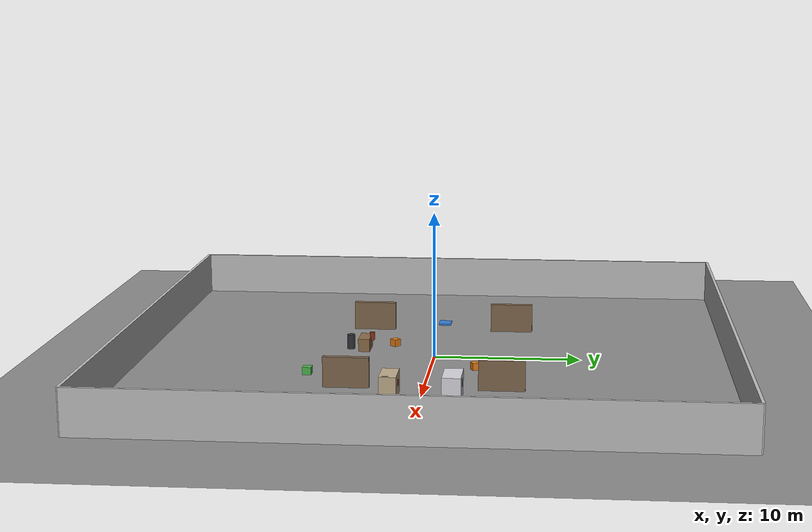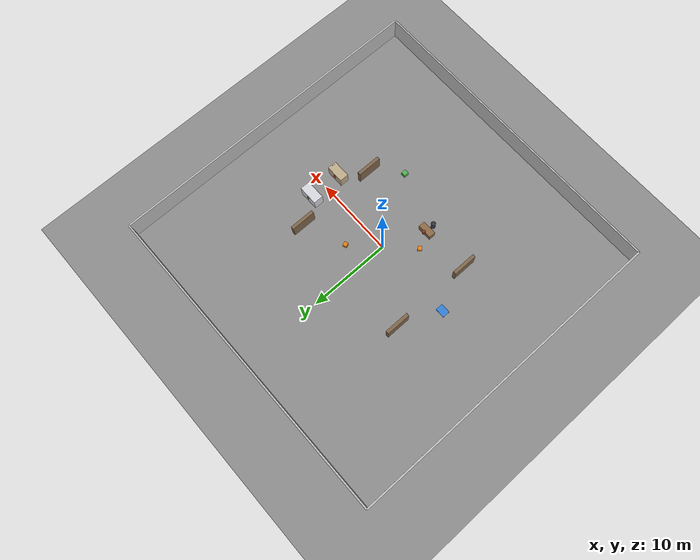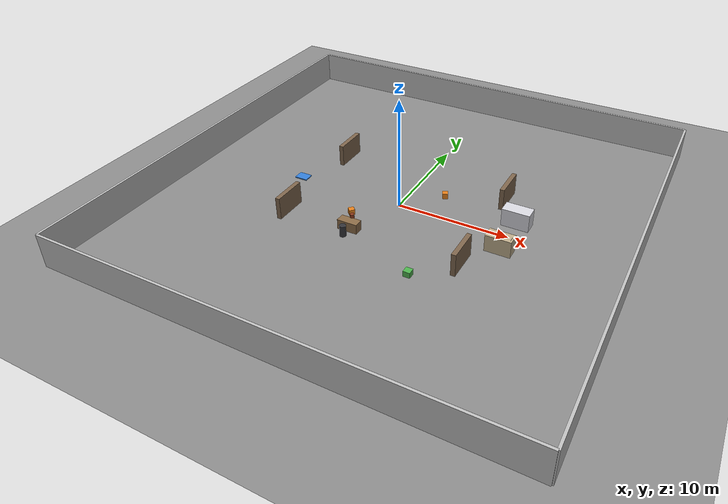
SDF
<?xml version="1.0" ?>
<sdf version="1.9">
  <world name="frontierx_warehouse">

    <!-- ── Physics ────────────────────────────────────────── -->
    <physics name="1ms" type="ignored">
      <max_step_size>0.001</max_step_size>
      <real_time_factor>1.0</real_time_factor>
      <real_time_update_rate>1000</real_time_update_rate>
    </physics>

    <!-- ── Required plugins ───────────────────────────────── -->
    <plugin filename="gz-sim-physics-system"
            name="gz::sim::systems::Physics"/>
    <plugin filename="gz-sim-user-commands-system"
            name="gz::sim::systems::UserCommands"/>
    <plugin filename="gz-sim-scene-broadcaster-system"
            name="gz::sim::systems::SceneBroadcaster"/>
    <plugin filename="gz-sim-contact-system"
            name="gz::sim::systems::Contact"/>
    <plugin filename=
    "gz-sim-sensors-system"
            name="gz::sim::systems::Sensors">
      <render_engine>ogre</render_engine>
    </plugin>
    <plugin filename="gz-sim-imu-system"
            name="gz::sim::systems::Imu"/>
    <plugin filename="gz-sim-navsat-system"
            name="gz::sim::systems::NavSat"/>
    <plugin filename="gz-sim-joint-state-publisher-system"
            name="gz::sim::systems::JointStatePublisher">
      <publish_link_pose>true</publish_link_pose>
    </plugin>

    <!-- ── Gravity ────────────────────────────────────────── -->
    <gravity>0 0 -9.8</gravity>
    <magnetic_field>5.5645e-6 2.2875e-5 -4.2731e-5</magnetic_field>
    <atmosphere type="adiabatic"/>

    <!-- ── Scene ─────────────────────────────────────────── -->
    <scene>
      <sky/>
      <grid>false</grid>
      <ambient>0.4 0.4 0.4 1</ambient>
      <background>0.15 0.15 0.18 1</background>
      <shadows>true</shadows>
    </scene>

    <!-- ── Sun (directional light) ───────────────────────── -->
    <light type="directional" name="sun">
      <cast_shadows>true</cast_shadows>
      <pose>0 0 10 0 0 0</pose>
      <diffuse>0.9 0.9 0.85 1</diffuse>
      <specular>0.3 0.3 0.3 1</specular>
      <direction>-0.5 0.1 -0.9</direction>
      <attenuation>
        <range>1000</range>
        <constant>0.9</constant>
        <linear>0.01</linear>
        <quadratic>0.001</quadratic>
      </attenuation>
    </light>

    <!-- ── Overhead point lights ─────────────────────────── -->
    <light type="point" name="overhead_light_1">
      <pose>5 5 4 0 0 0</pose>
      <diffuse>1 1 0.95 1</diffuse>
      <specular>0.2 0.2 0.2 1</specular>
      <attenuation>
        <range>12</range>
        <constant>0.5</constant>
        <linear>0.05</linear>
        <quadratic>0.005</quadratic>
      </attenuation>
    </light>

    <light type="point" name="overhead_light_2">
      <pose>-5 -5 4 0 0 0</pose>
      <diffuse>1 1 0.95 1</diffuse>
      <specular>0.2 0.2 0.2 1</specular>
      <attenuation>
        <range>12</range>
        <constant>0.5</constant>
        <linear>0.05</linear>
        <quadratic>0.005</quadratic>
      </attenuation>
    </light>

    <!-- ── Ground Plane ───────────────────────────────────── -->
    <model name="ground_plane">
      <static>true</static>
      <link name="link">
        <collision name="collision">
          <geometry>
            <plane>
              <normal>0 0 1</normal>
              <size>40 40</size>
            </plane>
          </geometry>
          <surface>
            <friction>
              <ode>
                <mu>0.8</mu>
                <mu2>0.8</mu2>
              </ode>
            </friction>
          </surface>
        </collision>
        <visual name="visual">
          <cast_shadows>false</cast_shadows>
          <geometry>
            <plane>
              <normal>0 0 1</normal>
              <size>40 40</size>
            </plane>
          </geometry>
          <material>
            <ambient>0.5 0.5 0.5 1</ambient>
            <diffuse>0.55 0.55 0.55 1</diffuse>
            <specular>0.05 0.05 0.05 1</specular>
          </material>
        </visual>
      </link>
    </model>

    <!-- ── Perimeter Walls ───────────────────────────────── -->
    <!-- North wall -->
    <model name="wall_north">
      <static>true</static>
      <pose>0 20 1.5 0 0 0</pose>
      <link name="link">
        <collision name="collision">
          <geometry><box><size>40 0.2 3</size></box></geometry>
        </collision>
        <visual name="visual">
          <geometry><box><size>40 0.2 3</size></box></geometry>
          <material><ambient>0.7 0.7 0.7 1</ambient><diffuse>0.75 0.75 0.75 1</diffuse></material>
        </visual>
      </link>
    </model>

    <!-- South wall -->
    <model name="wall_south">
      <static>true</static>
      <pose>0 -20 1.5 0 0 0</pose>
      <link name="link">
        <collision name="collision">
          <geometry><box><size>40 0.2 3</size></box></geometry>
        </collision>
        <visual name="visual">
          <geometry><box><size>40 0.2 3</size></box></geometry>
          <material><ambient>0.7 0.7 0.7 1</ambient><diffuse>0.75 0.75 0.75 1</diffuse></material>
        </visual>
      </link>
    </model>

    <!-- East wall -->
    <model name="wall_east">
      <static>true</static>
      <pose>20 0 1.5 0 0 0</pose>
      <link name="link">
        <collision name="collision">
          <geometry><box><size>0.2 40 3</size></box></geometry>
        </collision>
        <visual name="visual">
          <geometry><box><size>0.2 40 3</size></box></geometry>
          <material><ambient>0.7 0.7 0.7 1</ambient><diffuse>0.75 0.75 0.75 1</diffuse></material>
        </visual>
      </link>
    </model>

    <!-- West wall -->
    <model name="wall_west">
      <static>true</static>
      <pose>-20 0 1.5 0 0 0</pose>
      <link name="link">
        <collision name="collision">
          <geometry><box><size>0.2 40 3</size></box></geometry>
        </collision>
        <visual name="visual">
          <geometry><box><size>0.2 40 3</size></box></geometry>
          <material><ambient>0.7 0.7 0.7 1</ambient><diffuse>0.75 0.75 0.75 1</diffuse></material>
        </visual>
      </link>
    </model>

    <!-- ── Shelving Rack A (left aisle) ─────────────────── -->
    <model name="shelf_a1">
      <static>true</static>
      <pose>-8 5 1.0 0 0 0</pose>
      <link name="link">
        <collision name="collision">
          <geometry><box><size>0.4 3.0 2.0</size></box></geometry>
        </collision>
        <visual name="visual">
          <geometry><box><size>0.4 3.0 2.0</size></box></geometry>
          <material><ambient>0.4 0.3 0.2 1</ambient><diffuse>0.5 0.4 0.3 1</diffuse></material>
        </visual>
      </link>
    </model>

    <model name="shelf_a2">
      <static>true</static>
      <pose>-8 -5 1.0 0 0 0</pose>
      <link name="link">
        <collision name="collision">
          <geometry><box><size>0.4 3.0 2.0</size></box></geometry>
        </collision>
        <visual name="visual">
          <geometry><box><size>0.4 3.0 2.0</size></box></geometry>
          <material><ambient>0.4 0.3 0.2 1</ambient><diffuse>0.5 0.4 0.3 1</diffuse></material>
        </visual>
      </link>
    </model>

    <!-- ── Shelving Rack B (right aisle) ────────────────── -->
    <model name="shelf_b1">
      <static>true</static>
      <pose>8 5 1.0 0 0 0</pose>
      <link name="link">
        <collision name="collision">
          <geometry><box><size>0.4 3.0 2.0</size></box></geometry>
        </collision>
        <visual name="visual">
          <geometry><box><size>0.4 3.0 2.0</size></box></geometry>
          <material><ambient>0.4 0.3 0.2 1</ambient><diffuse>0.5 0.4 0.3 1</diffuse></material>
        </visual>
      </link>
    </model>

    <model name="shelf_b2">
      <static>true</static>
      <pose>8 -5 1.0 0 0 0</pose>
      <link name="link">
        <collision name="collision">
          <geometry><box><size>0.4 3.0 2.0</size></box></geometry>
        </collision>
        <visual name="visual">
          <geometry><box><size>0.4 3.0 2.0</size></box></geometry>
          <material><ambient>0.4 0.3 0.2 1</ambient><diffuse>0.5 0.4 0.3 1</diffuse></material>
        </visual>
      </link>
    </model>

    <!-- ── Navigation obstacle boxes ────────────────────── -->
    <model name="box_obstacle_1">
      <static>true</static>
      <pose>3 3 0.25 0 0 0.4</pose>
      <link name="link">
        <collision name="collision">
          <geometry><box><size>0.5 0.5 0.5</size></box></geometry>
        </collision>
        <visual name="visual">
          <geometry><box><size>0.5 0.5 0.5</size></box></geometry>
          <material><ambient>0.8 0.4 0.1 1</ambient><diffuse>0.9 0.5 0.1 1</diffuse></material>
        </visual>
      </link>
    </model>

    <model name="box_obstacle_2">
      <static>true</static>
      <pose>-3 -3 0.25 0 0 0.8</pose>
      <link name="link">
        <collision name="collision">
          <geometry><box><size>0.5 0.5 0.5</size></box></geometry>
        </collision>
        <visual name="visual">
          <geometry><box><size>0.5 0.5 0.5</size></box></geometry>
          <material><ambient>0.8 0.4 0.1 1</ambient><diffuse>0.9 0.5 0.1 1</diffuse></material>
        </visual>
      </link>
    </model>

    <model name="box_obstacle_3">
      <static>true</static>
      <pose>5 -8 0.25 0 0 0</pose>
      <link name="link">
        <collision name="collision">
          <geometry><box><size>0.6 0.6 0.5</size></box></geometry>
        </collision>
        <visual name="visual">
          <geometry><box><size>0.6 0.6 0.5</size></box></geometry>
          <material><ambient>0.2 0.6 0.2 1</ambient><diffuse>0.3 0.7 0.3 1</diffuse></material>
        </visual>
      </link>
    </model>

    <!-- ── DEMO FACTORY: Workbench + Pedestal for Robotic Arm ────── -->
    <model name="workbench">
      <static>true</static>
      <pose>-2 -5 0.45 0 0 0</pose>
      <link name="link">
        <collision name="collision">
          <geometry><box><size>1.8 0.8 0.9</size></box></geometry>
        </collision>
        <visual name="visual">
          <geometry><box><size>1.8 0.8 0.9</size></box></geometry>
          <material><ambient>0.4 0.3 0.2 1</ambient><diffuse>0.55 0.42 0.28 1</diffuse><specular>0.05 0.04 0.02 1</specular></material>
        </visual>
      </link>
    </model>

    <model name="arm_pedestal">
      <static>true</static>
      <pose>-2 -6 0.5 0 0 0</pose>
      <link name="link">
        <collision name="collision">
          <geometry><cylinder><radius>0.28</radius><length>1.0</length></cylinder></geometry>
        </collision>
        <visual name="visual">
          <geometry><cylinder><radius>0.28</radius><length>1.0</length></cylinder></geometry>
          <material><ambient>0.15 0.15 0.18 1</ambient><diffuse>0.2 0.2 0.22 1</diffuse></material>
        </visual>
      </link>
    </model>

    <!-- ── DEMO FACTORY: Main Generator #1 (normal) ──────────── -->
    <model name="gen_01">
      <static>true</static>
      <pose>10 2 0.8 0 0 0</pose>
      <link name="link">
        <collision name="collision">
          <geometry><box><size>2.4 1.2 1.6</size></box></geometry>
        </collision>
        <visual name="visual">
          <geometry><box><size>2.4 1.2 1.6</size></box></geometry>
          <material><ambient>0.75 0.75 0.78 1</ambient><diffuse>0.85 0.85 0.88 1</diffuse></material>
        </visual>
      </link>
      <!-- Control panel on front -->
      <link name="panel">
        <pose relative_to="link">0 0.61 0.2 0 0 0</pose>
        <collision name="c">
          <geometry><box><size>0.3 0.02 0.5</size></box></geometry>
        </collision>
        <visual name="v">
          <geometry><box><size>0.3 0.02 0.5</size></box></geometry>
          <material><ambient>0.15 0.5 0.15 1</ambient><diffuse>0.2 0.7 0.2 1</diffuse></material>
        </visual>
      </link>
    </model>

    <!-- ── DEMO FACTORY: Backup Generator #2 (overheating + damaged) ── -->
    <model name="gen_02">
      <static>true</static>
      <pose>10 -2 0.8 0 0 0</pose>
      <link name="link">
        <collision name="collision">
          <geometry><box><size>2.2 1.1 1.5</size></box></geometry>
        </collision>
        <visual name="visual">
          <geometry><box><size>2.2 1.1 1.5</size></box></geometry>
          <!-- Slight yellow tint + rust tones to indicate aged/damaged -->
          <material><ambient>0.65 0.6 0.45 1</ambient><diffuse>0.75 0.68 0.55 1</diffuse></material>
        </visual>
      </link>
      <link name="panel">
        <pose relative_to="link">0 0.56 0.15 0 0 0</pose>
        <visual name="v">
          <geometry><box><size>0.28 0.02 0.45</size></box></geometry>
          <!-- Red control panel to suggest overheating fault -->
          <material><ambient>0.5 0.12 0.12 1</ambient><diffuse>0.8 0.2 0.2 1</diffuse><emissive>0.3 0.05 0.05 1</emissive></material>
        </visual>
      </link>
      <!-- Visible side crack (dark thin box indented) -->
      <link name="crack">
        <pose relative_to="link">0.9 -0.15 0.5 0 0.2 0</pose>
        <visual name="v">
          <geometry><box><size>0.01 0.4 0.6</size></box></geometry>
          <material><ambient>0.08 0.08 0.08 1</ambient><diffuse>0.12 0.12 0.12 1</diffuse></material>
        </visual>
      </link>
    </model>

    <!-- ── DEMO FACTORY: Damaged Component on Workbench ──────── -->
    <model name="comp_damaged_01">
      <static>false</static>
      <pose>-2 -4.5 0.92 0 0 0</pose>
      <link name="link">
        <collision name="collision">
          <geometry><cylinder><radius>0.18</radius><length>0.55</length></cylinder></geometry>
        </collision>
        <visual name="visual">
          <geometry><cylinder><radius>0.18</radius><length>0.55</length></cylinder></geometry>
          <material><ambient>0.4 0.18 0.08 1</ambient><diffuse>0.55 0.22 0.1 1</diffuse></material>
        </visual>
      </link>
    </model>

    <!-- ── Charging Dock ─────────────────────────────────────── -->
    <model name="dock_01">
      <static>true</static>
      <pose>-10 0 0.05 0 0 0</pose>
      <link name="link">
        <collision name="collision">
          <geometry><box><size>1.2 0.9 0.1</size></box></geometry>
        </collision>
        <visual name="visual">
          <geometry><box><size>1.2 0.9 0.1</size></box></geometry>
          <material><ambient>0.1 0.35 0.6 1</ambient><diffuse>0.2 0.5 0.85 1</diffuse></material>
        </visual>
      </link>
    </model>

  </world>
</sdf>
